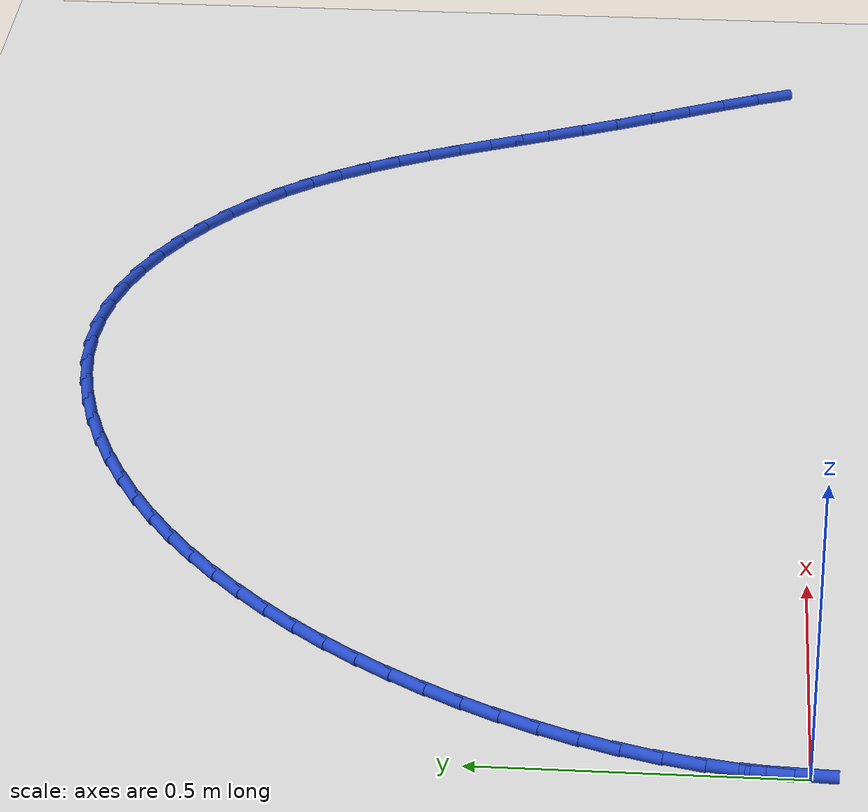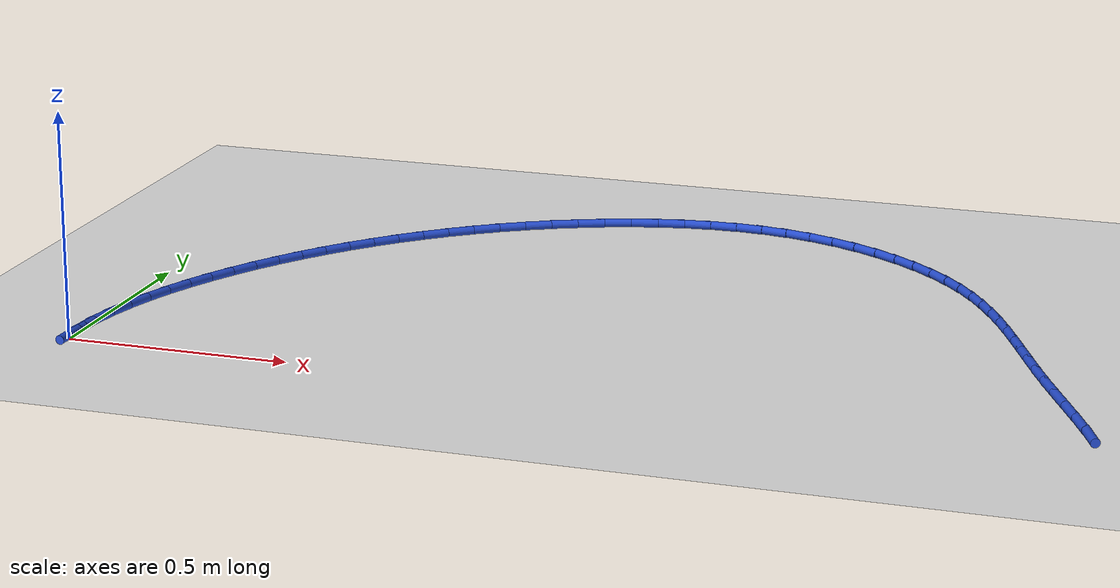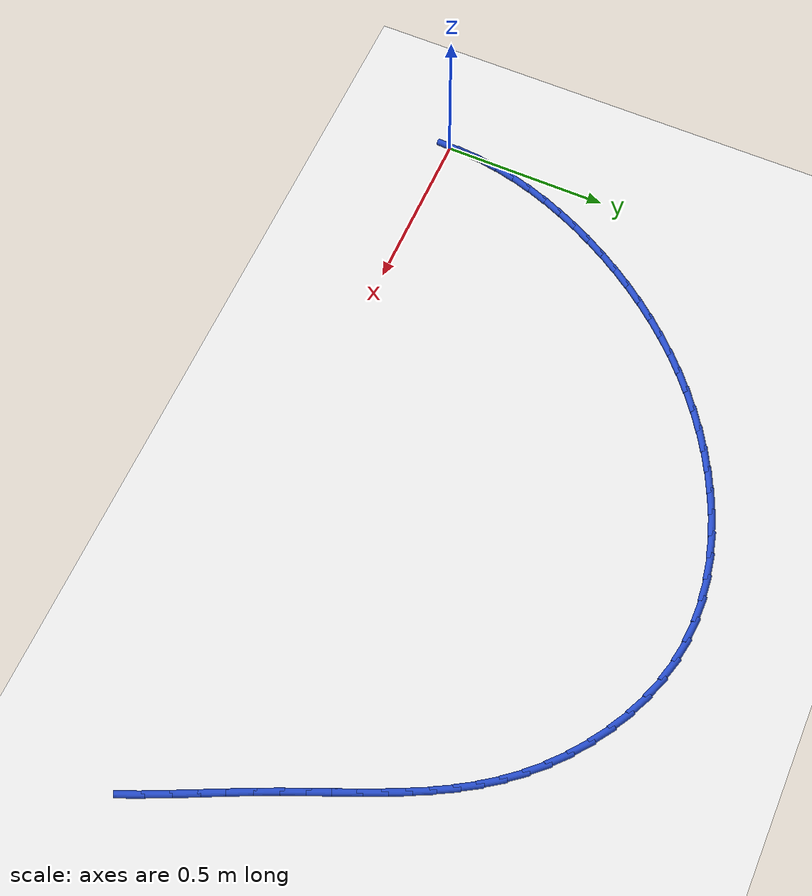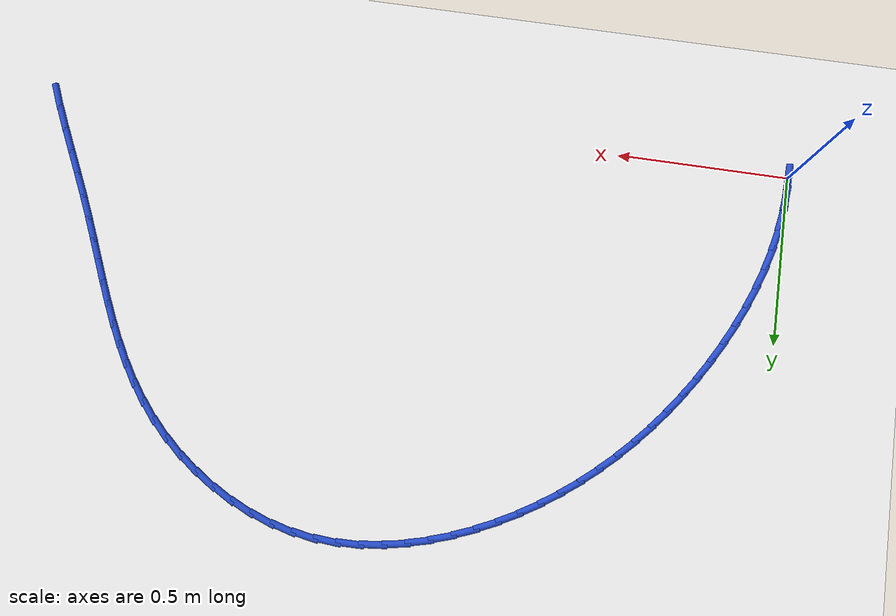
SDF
<sdf version="1.6">
 <world name="default">
  <model name="ground_plane">
   <static>1</static>
   <link name="link">
    <collision name="collision">
     <geometry><plane><normal>0 0 1</normal><size>100 100</size></plane></geometry>
     <surface><friction><ode><mu>100</mu><mu2>50</mu2></ode></friction></surface>
    </collision>
    <visual name="visual">
     <cast_shadows>0</cast_shadows>
     <geometry><plane><normal>0 0 1</normal><size>100 100</size></plane></geometry>
     <material>
      <script><uri>file://media/materials/scripts/gazebo.material</uri><name>Gazebo/WhiteGlow</name></script>
     </material>
    </visual>
   </link>
  </model>
  <model name="line">
   <link name="link_1">
    <pose>0.0030240054845123714 0.06334436735409182 0.01 0 1.57 1.4554380134632547</pose>
    <collision name="collision">
     <geometry><cylinder><radius>0.01</radius><length>0.08</length></cylinder></geometry>
    </collision>
    <visual name="visual">
     <material>
      <script><name>Gazebo/Blue</name><uri>file://media/materials/scripts/gazebo.material</uri></script>
     </material>
     <geometry><cylinder><radius>0.01</radius><length>0.08</length></cylinder></geometry>
    </visual>
   </link>
   <link name="link_2">
    <pose>0.010297170250346053 0.12611291218776957 0.01 0 1.57 1.3911802812947236</pose>
    <collision name="collision">
     <geometry><cylinder><radius>0.01</radius><length>0.08</length></cylinder></geometry>
    </collision>
    <visual name="visual">
     <material>
      <script><name>Gazebo/Blue</name><uri>file://media/materials/scripts/gazebo.material</uri></script>
     </material>
     <geometry><cylinder><radius>0.01</radius><length>0.08</length></cylinder></geometry>
    </visual>
   </link>
   <link name="link_3">
    <pose>0.021573942237615155 0.18821894623122534 0.01 0 1.57 1.3304921142184805</pose>
    <collision name="collision">
     <geometry><cylinder><radius>0.01</radius><length>0.08</length></cylinder></geometry>
    </collision>
    <visual name="visual">
     <material>
      <script><name>Gazebo/Blue</name><uri>file://media/materials/scripts/gazebo.material</uri></script>
     </material>
     <geometry><cylinder><radius>0.01</radius><length>0.08</length></cylinder></geometry>
    </visual>
   </link>
   <link name="link_4">
    <pose>0.03660876938643384 0.24957578121465135 0.01 0 1.57 1.2734222966027073</pose>
    <collision name="collision">
     <geometry><cylinder><radius>0.01</radius><length>0.08</length></cylinder></geometry>
    </collision>
    <visual name="visual">
     <material>
      <script><name>Gazebo/Blue</name><uri>file://media/materials/scripts/gazebo.material</uri></script>
     </material>
     <geometry><cylinder><radius>0.01</radius><length>0.08</length></cylinder></geometry>
    </visual>
   </link>
   <link name="link_5">
    <pose>0.055156099636916284 0.3100967288682398 0.01 0 1.57 1.219920421298895</pose>
    <collision name="collision">
     <geometry><cylinder><radius>0.01</radius><length>0.08</length></cylinder></geometry>
    </collision>
    <visual name="visual">
     <material>
      <script><name>Gazebo/Blue</name><uri>file://media/materials/scripts/gazebo.material</uri></script>
     </material>
     <geometry><cylinder><radius>0.01</radius><length>0.08</length></cylinder></geometry>
    </visual>
   </link>
   <link name="link_6">
    <pose>0.07697038092917652 0.36969510092218255 0.01 0 1.57 1.16986126929165</pose>
    <collision name="collision">
     <geometry><cylinder><radius>0.01</radius><length>0.08</length></cylinder></geometry>
    </collision>
    <visual name="visual">
     <material>
      <script><name>Gazebo/Blue</name><uri>file://media/materials/scripts/gazebo.material</uri></script>
     </material>
     <geometry><cylinder><radius>0.01</radius><length>0.08</length></cylinder></geometry>
    </visual>
   </link>
   <link name="link_7">
    <pose>0.10180606120332883 0.42828420910667203 0.01 0 1.57 1.1230669807905393</pose>
    <collision name="collision">
     <geometry><cylinder><radius>0.01</radius><length>0.08</length></cylinder></geometry>
    </collision>
    <visual name="visual">
     <material>
      <script><name>Gazebo/Blue</name><uri>file://media/materials/scripts/gazebo.material</uri></script>
     </material>
     <geometry><cylinder><radius>0.01</radius><length>0.08</length></cylinder></geometry>
    </visual>
   </link>
   <link name="link_8">
    <pose>0.12941758839948728 0.4857773651519003 0.01 0 1.57 1.0793256221925935</pose>
    <collision name="collision">
     <geometry><cylinder><radius>0.01</radius><length>0.08</length></cylinder></geometry>
    </collision>
    <visual name="visual">
     <material>
      <script><name>Gazebo/Blue</name><uri>file://media/materials/scripts/gazebo.material</uri></script>
     </material>
     <geometry><cylinder><radius>0.01</radius><length>0.08</length></cylinder></geometry>
    </visual>
   </link>
   <link name="link_9">
    <pose>0.15955941105875862 0.5420878806588633 0.01 0 1.57 1.0378432356690201</pose>
    <collision name="collision">
     <geometry><cylinder><radius>0.01</radius><length>0.08</length></cylinder></geometry>
    </collision>
    <visual name="visual">
     <material>
      <script><name>Gazebo/Blue</name><uri>file://media/materials/scripts/gazebo.material</uri></script>
     </material>
     <geometry><cylinder><radius>0.01</radius><length>0.08</length></cylinder></geometry>
    </visual>
   </link>
   <link name="link_10">
    <pose>0.1920230043824847 0.5971211075463536 0.01 0 1.57 0.996348286351908</pose>
    <collision name="collision">
     <geometry><cylinder><radius>0.01</radius><length>0.08</length></cylinder></geometry>
    </collision>
    <visual name="visual">
     <material>
      <script><name>Gazebo/Blue</name><uri>file://media/materials/scripts/gazebo.material</uri></script>
     </material>
     <geometry><cylinder><radius>0.01</radius><length>0.08</length></cylinder></geometry>
    </visual>
   </link>
   <link name="link_11">
    <pose>0.22673685490412293 0.6507529441811852 0.01 0 1.57 0.9542381655010276</pose>
    <collision name="collision">
     <geometry><cylinder><radius>0.01</radius><length>0.08</length></cylinder></geometry>
    </collision>
    <visual name="visual">
     <material>
      <script><name>Gazebo/Blue</name><uri>file://media/materials/scripts/gazebo.material</uri></script>
     </material>
     <geometry><cylinder><radius>0.01</radius><length>0.08</length></cylinder></geometry>
    </visual>
   </link>
   <link name="link_12">
    <pose>0.2636611330821353 0.7028524777845718 0.01 0 1.57 0.9114028991271959</pose>
    <collision name="collision">
     <geometry><cylinder><radius>0.01</radius><length>0.08</length></cylinder></geometry>
    </collision>
    <visual name="visual">
     <material>
      <script><name>Gazebo/Blue</name><uri>file://media/materials/scripts/gazebo.material</uri></script>
     </material>
     <geometry><cylinder><radius>0.01</radius><length>0.08</length></cylinder></geometry>
    </visual>
   </link>
   <link name="link_13">
    <pose>0.30275600937498326 0.753288795577726 0.01 0 1.57 0.8677388082825714</pose>
    <collision name="collision">
     <geometry><cylinder><radius>0.01</radius><length>0.08</length></cylinder></geometry>
    </collision>
    <visual name="visual">
     <material>
      <script><name>Gazebo/Blue</name><uri>file://media/materials/scripts/gazebo.material</uri></script>
     </material>
     <geometry><cylinder><radius>0.01</radius><length>0.08</length></cylinder></geometry>
    </visual>
   </link>
   <link name="link_14">
    <pose>0.3439816542411288 0.8019309847818611 0.01 0 1.57 0.8231501060800518</pose>
    <collision name="collision">
     <geometry><cylinder><radius>0.01</radius><length>0.08</length></cylinder></geometry>
    </collision>
    <visual name="visual">
     <material>
      <script><name>Gazebo/Blue</name><uri>file://media/materials/scripts/gazebo.material</uri></script>
     </material>
     <geometry><cylinder><radius>0.01</radius><length>0.08</length></cylinder></geometry>
    </visual>
   </link>
   <link name="link_15">
    <pose>0.3872982381390334 0.8486481326181903 0.01 0 1.57 0.7775508466184992</pose>
    <collision name="collision">
     <geometry><cylinder><radius>0.01</radius><length>0.08</length></cylinder></geometry>
    </collision>
    <visual name="visual">
     <material>
      <script><name>Gazebo/Blue</name><uri>file://media/materials/scripts/gazebo.material</uri></script>
     </material>
     <geometry><cylinder><radius>0.01</radius><length>0.08</length></cylinder></geometry>
    </visual>
   </link>
   <link name="link_16">
    <pose>0.43266593152715893 0.8933093263079266 0.01 0 1.57 0.7308672326404573</pose>
    <collision name="collision">
     <geometry><cylinder><radius>0.01</radius><length>0.08</length></cylinder></geometry>
    </collision>
    <visual name="visual">
     <material>
      <script><name>Gazebo/Blue</name><uri>file://media/materials/scripts/gazebo.material</uri></script>
     </material>
     <geometry><cylinder><radius>0.01</radius><length>0.08</length></cylinder></geometry>
    </visual>
   </link>
   <link name="link_17">
    <pose>0.4800449048639674 0.9357836530722837 0.01 0 1.57 0.683040261651698</pose>
    <collision name="collision">
     <geometry><cylinder><radius>0.01</radius><length>0.08</length></cylinder></geometry>
    </collision>
    <visual name="visual">
     <material>
      <script><name>Gazebo/Blue</name><uri>file://media/materials/scripts/gazebo.material</uri></script>
     </material>
     <geometry><cylinder><radius>0.01</radius><length>0.08</length></cylinder></geometry>
    </visual>
   </link>
   <link name="link_18">
    <pose>0.5293953286079203 0.9759402001324746 0.01 0 1.57 0.6340286536510135</pose>
    <collision name="collision">
     <geometry><cylinder><radius>0.01</radius><length>0.08</length></cylinder></geometry>
    </collision>
    <visual name="visual">
     <material>
      <script><name>Gazebo/Blue</name><uri>file://media/materials/scripts/gazebo.material</uri></script>
     </material>
     <geometry><cylinder><radius>0.01</radius><length>0.08</length></cylinder></geometry>
    </visual>
   </link>
   <link name="link_19">
    <pose>0.580677373217479 1.0136480547097115 0.01 0 1.57 0.5838119575457698</pose>
    <collision name="collision">
     <geometry><cylinder><radius>0.01</radius><length>0.08</length></cylinder></geometry>
    </collision>
    <visual name="visual">
     <material>
      <script><name>Gazebo/Blue</name><uri>file://media/materials/scripts/gazebo.material</uri></script>
     </material>
     <geometry><cylinder><radius>0.01</radius><length>0.08</length></cylinder></geometry>
    </visual>
   </link>
   <link name="link_20">
    <pose>0.6338512091511058 1.0487763040252087 0.01 0 1.57 0.5323936796416955</pose>
    <collision name="collision">
     <geometry><cylinder><radius>0.01</radius><length>0.08</length></cylinder></geometry>
    </collision>
    <visual name="visual">
     <material>
      <script><name>Gazebo/Blue</name><uri>file://media/materials/scripts/gazebo.material</uri></script>
     </material>
     <geometry><cylinder><radius>0.01</radius><length>0.08</length></cylinder></geometry>
    </visual>
   </link>
   <link name="link_21">
    <pose>0.6888770068672622 1.0811940353001788 0.01 0 1.57 0.479804220813524</pose>
    <collision name="collision">
     <geometry><cylinder><radius>0.01</radius><length>0.08</length></cylinder></geometry>
    </collision>
    <visual name="visual">
     <material>
      <script><name>Gazebo/Blue</name><uri>file://media/materials/scripts/gazebo.material</uri></script>
     </material>
     <geometry><cylinder><radius>0.01</radius><length>0.08</length></cylinder></geometry>
    </visual>
   </link>
   <link name="link_22">
    <pose>0.74571493682441 1.1107703357558356 0.01 0 1.57 0.42593121347770946</pose>
    <collision name="collision">
     <geometry><cylinder><radius>0.01</radius><length>0.08</length></cylinder></geometry>
    </collision>
    <visual name="visual">
     <material>
      <script><name>Gazebo/Blue</name><uri>file://media/materials/scripts/gazebo.material</uri></script>
     </material>
     <geometry><cylinder><radius>0.01</radius><length>0.08</length></cylinder></geometry>
    </visual>
   </link>
   <link name="link_23">
    <pose>0.804304128166059 1.1373525788620844 0.01 0 1.57 0.3692649989251018</pose>
    <collision name="collision">
     <geometry><cylinder><radius>0.01</radius><length>0.08</length></cylinder></geometry>
    </collision>
    <visual name="visual">
     <material>
      <script><name>Gazebo/Blue</name><uri>file://media/materials/scripts/gazebo.material</uri></script>
     </material>
     <geometry><cylinder><radius>0.01</radius><length>0.08</length></cylinder></geometry>
    </visual>
   </link>
   <link name="link_24">
    <pose>0.8644189097767696 1.160618071158775 0.01 0 1.57 0.30849053019101413</pose>
    <collision name="collision">
     <geometry><cylinder><radius>0.01</radius><length>0.08</length></cylinder></geometry>
    </collision>
    <visual name="visual">
     <material>
      <script><name>Gazebo/Blue</name><uri>file://media/materials/scripts/gazebo.material</uri></script>
     </material>
     <geometry><cylinder><radius>0.01</radius><length>0.08</length></cylinder></geometry>
    </visual>
   </link>
   <link name="link_25">
    <pose>0.9257559472394018 1.1801639739275998 0.01 0 1.57 0.24284784288551908</pose>
    <collision name="collision">
     <geometry><cylinder><radius>0.01</radius><length>0.08</length></cylinder></geometry>
    </collision>
    <visual name="visual">
     <material>
      <script><name>Gazebo/Blue</name><uri>file://media/materials/scripts/gazebo.material</uri></script>
     </material>
     <geometry><cylinder><radius>0.01</radius><length>0.08</length></cylinder></geometry>
    </visual>
   </link>
   <link name="link_26">
    <pose>0.9880114505998909 1.1955869783553181 0.01 0 1.57 0.17161725176599885</pose>
    <collision name="collision">
     <geometry><cylinder><radius>0.01</radius><length>0.08</length></cylinder></geometry>
    </collision>
    <visual name="visual">
     <material>
      <script><name>Gazebo/Blue</name><uri>file://media/materials/scripts/gazebo.material</uri></script>
     </material>
     <geometry><cylinder><radius>0.01</radius><length>0.08</length></cylinder></geometry>
    </visual>
   </link>
   <link name="link_27">
    <pose>1.0508816299041708 1.20648377562869 0.01 0 1.57 0.09416796539619249</pose>
    <collision name="collision">
     <geometry><cylinder><radius>0.01</radius><length>0.08</length></cylinder></geometry>
    </collision>
    <visual name="visual">
     <material>
      <script><name>Gazebo/Blue</name><uri>file://media/materials/scripts/gazebo.material</uri></script>
     </material>
     <geometry><cylinder><radius>0.01</radius><length>0.08</length></cylinder></geometry>
    </visual>
   </link>
   <link name="link_28">
    <pose>1.1140626951981765 1.2124510569344755 0.01 0 1.57 0.010040412501890346</pose>
    <collision name="collision">
     <geometry><cylinder><radius>0.01</radius><length>0.08</length></cylinder></geometry>
    </collision>
    <visual name="visual">
     <material>
      <script><name>Gazebo/Blue</name><uri>file://media/materials/scripts/gazebo.material</uri></script>
     </material>
     <geometry><cylinder><radius>0.01</radius><length>0.08</length></cylinder></geometry>
    </visual>
   </link>
   <link name="link_29">
    <pose>1.177250856527843 1.213085513459434 0.01 0 1.57 -0.08094151952096355</pose>
    <collision name="collision">
     <geometry><cylinder><radius>0.01</radius><length>0.08</length></cylinder></geometry>
    </collision>
    <visual name="visual">
     <material>
      <script><name>Gazebo/Blue</name><uri>file://media/materials/scripts/gazebo.material</uri></script>
     </material>
     <geometry><cylinder><radius>0.01</radius><length>0.08</length></cylinder></geometry>
    </visual>
   </link>
   <link name="link_30">
    <pose>1.240142323939104 1.207983836390325 0.01 0 1.57 -0.1783576043160028</pose>
    <collision name="collision">
     <geometry><cylinder><radius>0.01</radius><length>0.08</length></cylinder></geometry>
    </collision>
    <visual name="visual">
     <material>
      <script><name>Gazebo/Blue</name><uri>file://media/materials/scripts/gazebo.material</uri></script>
     </material>
     <geometry><cylinder><radius>0.01</radius><length>0.08</length></cylinder></geometry>
    </visual>
   </link>
   <link name="link_31">
    <pose>1.302431291770636 1.196754801452961 0.01 0 1.57 -0.2756748434678193</pose>
    <collision name="collision">
     <geometry><cylinder><radius>0.01</radius><length>0.08</length></cylinder></geometry>
    </collision>
    <visual name="visual">
     <material>
      <script><name>Gazebo/Blue</name><uri>file://media/materials/scripts/gazebo.material</uri></script>
     </material>
     <geometry><cylinder><radius>0.01</radius><length>0.08</length></cylinder></geometry>
    </visual>
   </link>
   <link name="link_32">
    <pose>1.363744657623131 1.1794106408048672 0.01 0 1.57 -0.36610280055242256</pose>
    <collision name="collision">
     <geometry><cylinder><radius>0.01</radius><length>0.08</length></cylinder></geometry>
    </collision>
    <visual name="visual">
     <material>
      <script><name>Gazebo/Blue</name><uri>file://media/materials/scripts/gazebo.material</uri></script>
     </material>
     <geometry><cylinder><radius>0.01</radius><length>0.08</length></cylinder></geometry>
    </visual>
   </link>
   <link name="link_33">
    <pose>1.4236278091776837 1.1564522536964483 0.01 0 1.57 -0.4503965542203121</pose>
    <collision name="collision">
     <geometry><cylinder><radius>0.01</radius><length>0.08</length></cylinder></geometry>
    </collision>
    <visual name="visual">
     <material>
      <script><name>Gazebo/Blue</name><uri>file://media/materials/scripts/gazebo.material</uri></script>
     </material>
     <geometry><cylinder><radius>0.01</radius><length>0.08</length></cylinder></geometry>
    </visual>
   </link>
   <link name="link_34">
    <pose>1.481621243014489 1.1284098624355916 0.01 0 1.57 -0.5299101216188539</pose>
    <collision name="collision">
     <geometry><cylinder><radius>0.01</radius><length>0.08</length></cylinder></geometry>
    </collision>
    <visual name="visual">
     <material>
      <script><name>Gazebo/Blue</name><uri>file://media/materials/scripts/gazebo.material</uri></script>
     </material>
     <geometry><cylinder><radius>0.01</radius><length>0.08</length></cylinder></geometry>
    </visual>
   </link>
   <link name="link_35">
    <pose>1.5372654557137424 1.0958136893301837 0.01 0 1.57 -0.6060731075664705</pose>
    <collision name="collision">
     <geometry><cylinder><radius>0.01</radius><length>0.08</length></cylinder></geometry>
    </collision>
    <visual name="visual">
     <material>
      <script><name>Gazebo/Blue</name><uri>file://media/materials/scripts/gazebo.material</uri></script>
     </material>
     <geometry><cylinder><radius>0.01</radius><length>0.08</length></cylinder></geometry>
    </visual>
   </link>
   <link name="link_36">
    <pose>1.5901009438556377 1.059193956688112 0.01 0 1.57 -0.6803651124655944</pose>
    <collision name="collision">
     <geometry><cylinder><radius>0.01</radius><length>0.08</length></cylinder></geometry>
    </collision>
    <visual name="visual">
     <material>
      <script><name>Gazebo/Blue</name><uri>file://media/materials/scripts/gazebo.material</uri></script>
     </material>
     <geometry><cylinder><radius>0.01</radius><length>0.08</length></cylinder></geometry>
    </visual>
   </link>
   <link name="link_37">
    <pose>1.6396682040203703 1.0190808868172627 0.01 0 1.57 -0.7543299223008363</pose>
    <collision name="collision">
     <geometry><cylinder><radius>0.01</radius><length>0.08</length></cylinder></geometry>
    </collision>
    <visual name="visual">
     <material>
      <script><name>Gazebo/Blue</name><uri>file://media/materials/scripts/gazebo.material</uri></script>
     </material>
     <geometry><cylinder><radius>0.01</radius><length>0.08</length></cylinder></geometry>
    </visual>
   </link>
   <link name="link_38">
    <pose>1.6855077327881354 0.9760047020255238 0.01 0 1.57 -0.8294284989401155</pose>
    <collision name="collision">
     <geometry><cylinder><radius>0.01</radius><length>0.08</length></cylinder></geometry>
    </collision>
    <visual name="visual">
     <material>
      <script><name>Gazebo/Blue</name><uri>file://media/materials/scripts/gazebo.material</uri></script>
     </material>
     <geometry><cylinder><radius>0.01</radius><length>0.08</length></cylinder></geometry>
    </visual>
   </link>
   <link name="link_39">
    <pose>1.7271855372491707 0.9304850827468923 0.01 0 1.57 -0.9028035067623561</pose>
    <collision name="collision">
     <geometry><cylinder><radius>0.01</radius><length>0.08</length></cylinder></geometry>
    </collision>
    <visual name="visual">
     <material>
      <script><name>Gazebo/Blue</name><uri>file://media/materials/scripts/gazebo.material</uri></script>
     </material>
     <geometry><cylinder><radius>0.01</radius><length>0.08</length></cylinder></geometry>
    </visual>
   </link>
   <link name="link_40">
    <pose>1.7647874936214598 0.8828268805164452 0.01 0 1.57 -0.9694161635344453</pose>
    <collision name="collision">
     <geometry><cylinder><radius>0.01</radius><length>0.08</length></cylinder></geometry>
    </collision>
    <visual name="visual">
     <material>
      <script><name>Gazebo/Blue</name><uri>file://media/materials/scripts/gazebo.material</uri></script>
     </material>
     <geometry><cylinder><radius>0.01</radius><length>0.08</length></cylinder></geometry>
    </visual>
   </link>
   <link name="link_41">
    <pose>1.7988847047499432 0.8331344335161204 0.01 0 1.57 -1.0274748506772846</pose>
    <collision name="collision">
     <geometry><cylinder><radius>0.01</radius><length>0.08</length></cylinder></geometry>
    </collision>
    <visual name="visual">
     <material>
      <script><name>Gazebo/Blue</name><uri>file://media/materials/scripts/gazebo.material</uri></script>
     </material>
     <geometry><cylinder><radius>0.01</radius><length>0.08</length></cylinder></geometry>
    </visual>
   </link>
   <link name="link_42">
    <pose>1.8300668451588307 0.781504405432113 0.01 0 1.57 -1.0759174504886984</pose>
    <collision name="collision">
     <geometry><cylinder><radius>0.01</radius><length>0.08</length></cylinder></geometry>
    </collision>
    <visual name="visual">
     <material>
      <script><name>Gazebo/Blue</name><uri>file://media/materials/scripts/gazebo.material</uri></script>
     </material>
     <geometry><cylinder><radius>0.01</radius><length>0.08</length></cylinder></geometry>
    </visual>
   </link>
   <link name="link_43">
    <pose>1.858923589372331 0.7280334599506183 0.01 0 1.57 -1.1142234384005958</pose>
    <collision name="collision">
     <geometry><cylinder><radius>0.01</radius><length>0.08</length></cylinder></geometry>
    </collision>
    <visual name="visual">
     <material>
      <script><name>Gazebo/Blue</name><uri>file://media/materials/scripts/gazebo.material</uri></script>
     </material>
     <geometry><cylinder><radius>0.01</radius><length>0.08</length></cylinder></geometry>
    </visual>
   </link>
   <link name="link_44">
    <pose>1.8860446119146528 0.6728182607578314 0.01 0 1.57 -1.1423011530418463</pose>
    <collision name="collision">
     <geometry><cylinder><radius>0.01</radius><length>0.08</length></cylinder></geometry>
    </collision>
    <visual name="visual">
     <material>
      <script><name>Gazebo/Blue</name><uri>file://media/materials/scripts/gazebo.material</uri></script>
     </material>
     <geometry><cylinder><radius>0.01</radius><length>0.08</length></cylinder></geometry>
    </visual>
   </link>
   <link name="link_45">
    <pose>1.9120195873100032 0.615955471539947 0.01 0 1.57 -1.1603618524172632</pose>
    <collision name="collision">
     <geometry><cylinder><radius>0.01</radius><length>0.08</length></cylinder></geometry>
    </collision>
    <visual name="visual">
     <material>
      <script><name>Gazebo/Blue</name><uri>file://media/materials/scripts/gazebo.material</uri></script>
     </material>
     <geometry><cylinder><radius>0.01</radius><length>0.08</length></cylinder></geometry>
    </visual>
   </link>
   <link name="link_46">
    <pose>1.9374381900825925 0.5575417559831607 0.01 0 1.57 -1.1688123040882186</pose>
    <collision name="collision">
     <geometry><cylinder><radius>0.01</radius><length>0.08</length></cylinder></geometry>
    </collision>
    <visual name="visual">
     <material>
      <script><name>Gazebo/Blue</name><uri>file://media/materials/scripts/gazebo.material</uri></script>
     </material>
     <geometry><cylinder><radius>0.01</radius><length>0.08</length></cylinder></geometry>
    </visual>
   </link>
   <link name="link_47">
    <pose>1.9628900947566283 0.49767377777366706 0.01 0 1.57 -1.1681787186199009</pose>
    <collision name="collision">
     <geometry><cylinder><radius>0.01</radius><length>0.08</length></cylinder></geometry>
    </collision>
    <visual name="visual">
     <material>
      <script><name>Gazebo/Blue</name><uri>file://media/materials/scripts/gazebo.material</uri></script>
     </material>
     <geometry><cylinder><radius>0.01</radius><length>0.08</length></cylinder></geometry>
    </visual>
   </link>
   <link name="link_48">
    <pose>1.98896497585632 0.43644820059766165 0.01 0 1.57 -1.1590619654448924</pose>
    <collision name="collision">
     <geometry><cylinder><radius>0.01</radius><length>0.08</length></cylinder></geometry>
    </collision>
    <visual name="visual">
     <material>
      <script><name>Gazebo/Blue</name><uri>file://media/materials/scripts/gazebo.material</uri></script>
     </material>
     <geometry><cylinder><radius>0.01</radius><length>0.08</length></cylinder></geometry>
    </visual>
   </link>
   <link name="link_49">
    <pose>2.0162525079058744 0.37396168814133923 0.01 0 1.57 -1.1428814471227031</pose>
    <collision name="collision">
     <geometry><cylinder><radius>0.01</radius><length>0.08</length></cylinder></geometry>
    </collision>
    <visual name="visual">
     <material>
      <script><name>Gazebo/Blue</name><uri>file://media/materials/scripts/gazebo.material</uri></script>
     </material>
     <geometry><cylinder><radius>0.01</radius><length>0.08</length></cylinder></geometry>
    </visual>
   </link>
   <link name="link_50">
    <pose>2.045277890543164 0.31032345276418255 0.01 0 1.57 -1.130130904238592</pose>
    <collision name="collision">
     <geometry><cylinder><radius>0.01</radius><length>0.08</length></cylinder></geometry>
    </collision>
    <visual name="visual">
     <material>
      <script><name>Gazebo/Blue</name><uri>file://media/materials/scripts/gazebo.material</uri></script>
     </material>
     <geometry><cylinder><radius>0.01</radius><length>0.08</length></cylinder></geometry>
    </visual>
   </link>
   <link name="link_51">
    <pose>2.075701547812118 0.24581101710913095 0.01 0 1.57 -1.1274152677535536</pose>
    <collision name="collision">
     <geometry><cylinder><radius>0.01</radius><length>0.08</length></cylinder></geometry>
    </collision>
    <visual name="visual">
     <material>
      <script><name>Gazebo/Blue</name><uri>file://media/materials/scripts/gazebo.material</uri></script>
     </material>
     <geometry><cylinder><radius>0.01</radius><length>0.08</length></cylinder></geometry>
    </visual>
   </link>
   <link name="link_52">
    <pose>2.106565882783629 0.1808221885333127 0.01 0 1.57 -1.1345419781321513</pose>
    <collision name="collision">
     <geometry><cylinder><radius>0.01</radius><length>0.08</length></cylinder></geometry>
    </collision>
    <visual name="visual">
     <material>
      <script><name>Gazebo/Blue</name><uri>file://media/materials/scripts/gazebo.material</uri></script>
     </material>
     <geometry><cylinder><radius>0.01</radius><length>0.08</length></cylinder></geometry>
    </visual>
   </link>
   <link name="link_53">
    <pose>2.1368999272136073 0.11575737683757657 0.01 0 1.57 -1.151807620771765</pose>
    <collision name="collision">
     <geometry><cylinder><radius>0.01</radius><length>0.08</length></cylinder></geometry>
    </collision>
    <visual name="visual">
     <material>
      <script><name>Gazebo/Blue</name><uri>file://media/materials/scripts/gazebo.material</uri></script>
     </material>
     <geometry><cylinder><radius>0.01</radius><length>0.08</length></cylinder></geometry>
    </visual>
   </link>
   <link name="link_54">
    <pose>2.1657327128579666 0.051016991822771626 0.01 0 1.57 -1.180173053596237</pose>
    <collision name="collision">
     <geometry><cylinder><radius>0.01</radius><length>0.08</length></cylinder></geometry>
    </collision>
    <visual name="visual">
     <material>
      <script><name>Gazebo/Blue</name><uri>file://media/materials/scripts/gazebo.material</uri></script>
     </material>
     <geometry><cylinder><radius>0.01</radius><length>0.08</length></cylinder></geometry>
    </visual>
   </link>
   <link name="link_110">
    <pose>-5.898059818321144e-17 1.8041124150158794e-16 0.01 0 1.57 1.5220821902918478</pose>
    <collision name="collision">
     <geometry><cylinder><radius>0.01</radius><length>0.08</length></cylinder></geometry>
    </collision>
    <visual name="visual">
     <material>
      <script><name>Gazebo/Blue</name><uri>file://media/materials/scripts/gazebo.material</uri></script>
     </material>
     <geometry><cylinder><radius>0.01</radius><length>0.08</length></cylinder></geometry>
    </visual>
   </link>
   <link name="link_111">
    <pose>0.0030855520932507527 0.0632898617862207 0.01 0 1.57 1.5220821902918482</pose>
    <collision name="collision">
     <geometry><cylinder><radius>0.01</radius><length>0.08</length></cylinder></geometry>
    </collision>
    <visual name="visual">
     <material>
      <script><name>Gazebo/Blue</name><uri>file://media/materials/scripts/gazebo.material</uri></script>
     </material>
     <geometry><cylinder><radius>0.01</radius><length>0.08</length></cylinder></geometry>
    </visual>
   </link>
  </model>
 </world>
</sdf>
